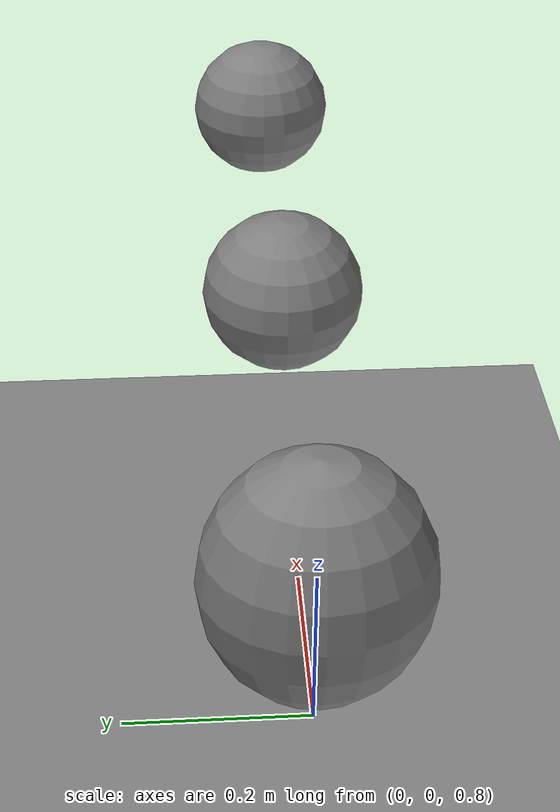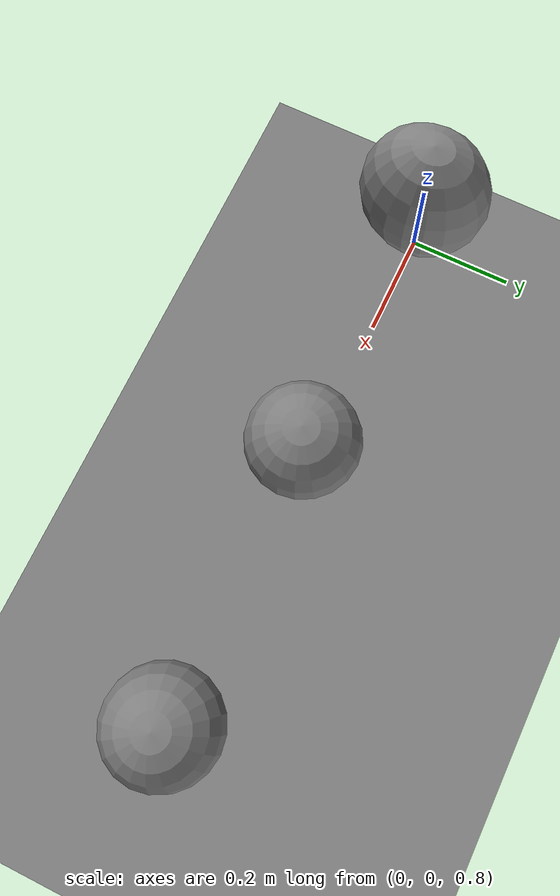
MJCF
<mujoco model="geom_fluid_defaults">
  <compiler autolimits="true"/>
  <default>
    <default class="floaty">
      <geom density="0.2" fluidshape="ellipsoid" fluidcoef="0.6 0.3 1.4 1.1 0.9"/>
    </default>
    <default class="floaty_default_coef">
      <geom density="0.3" fluidshape="ellipsoid"/>
    </default>
  </default>
  <option density="1.2" viscosity="1.8e-5"/>
  <worldbody>
    <geom name="floor" type="plane" size="3 3 0.1"/>
    <body name="balloon" pos="0 0 1" childclass="floaty">
      <freejoint/>
      <geom name="balloon_g" type="ellipsoid" size="0.1 0.12 0.15"/>
    </body>
    <body name="balloon2" pos="0.5 0 1" childclass="floaty_default_coef">
      <freejoint/>
      <geom name="balloon2_g" type="sphere" size="0.1"/>
    </body>
    <body name="plain" pos="1 0 1">
      <freejoint/>
      <geom name="plain_g" type="sphere" size="0.1" class="floaty"/>
    </body>
  </worldbody>
</mujoco>
